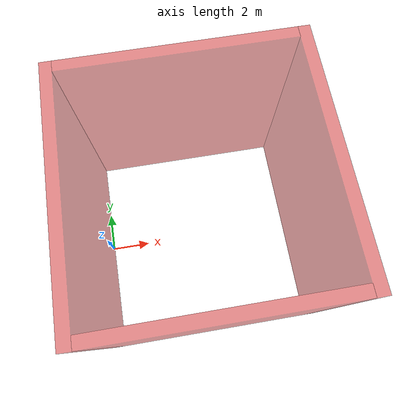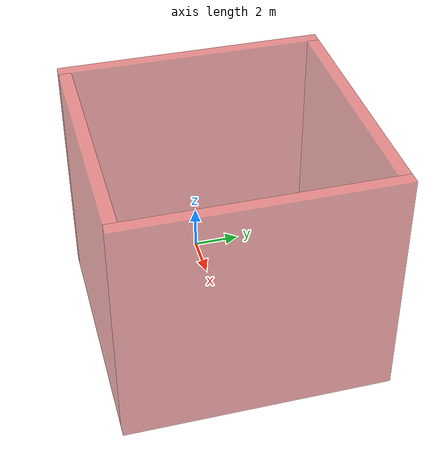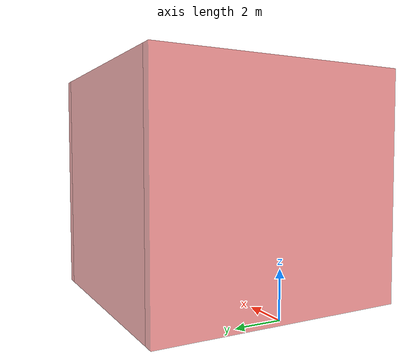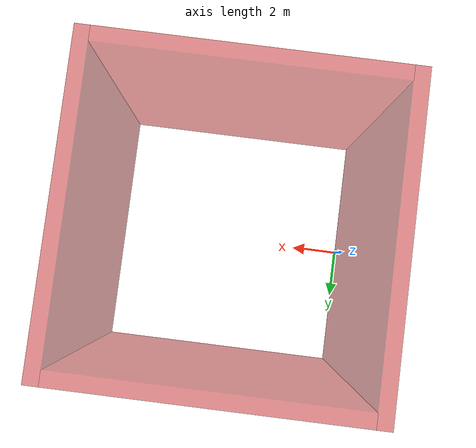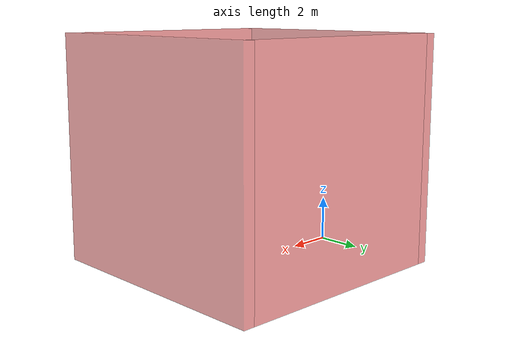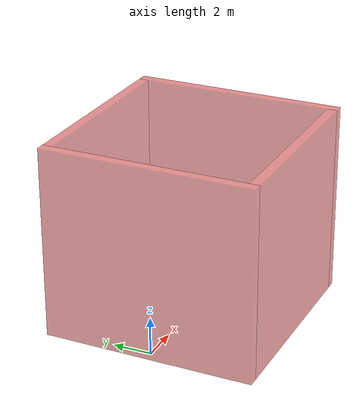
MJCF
<mujoco model="10x10_wall">
  <default>
    <default class="wall">
      <geom rgba="0.8 0.1 0.1 0.5"/>
    </default>
  </default>
  <worldbody>
    <geom name="wall_left" type="box" pos="-0.25 0 5" size="0.25 5.5 5" class="wall"/>
    <geom name="wall_right" type="box" pos="10.25 0 5" size="0.25 5.5 5" class="wall"/>
    <geom name="wall_top" type="box" pos="5 5.25 5" size="5 0.25 5" class="wall"/>
    <geom name="wall_bottom" type="box" pos="5 -5.25 5" size="5 0.25 5" class="wall"/>
  </worldbody>
</mujoco>
